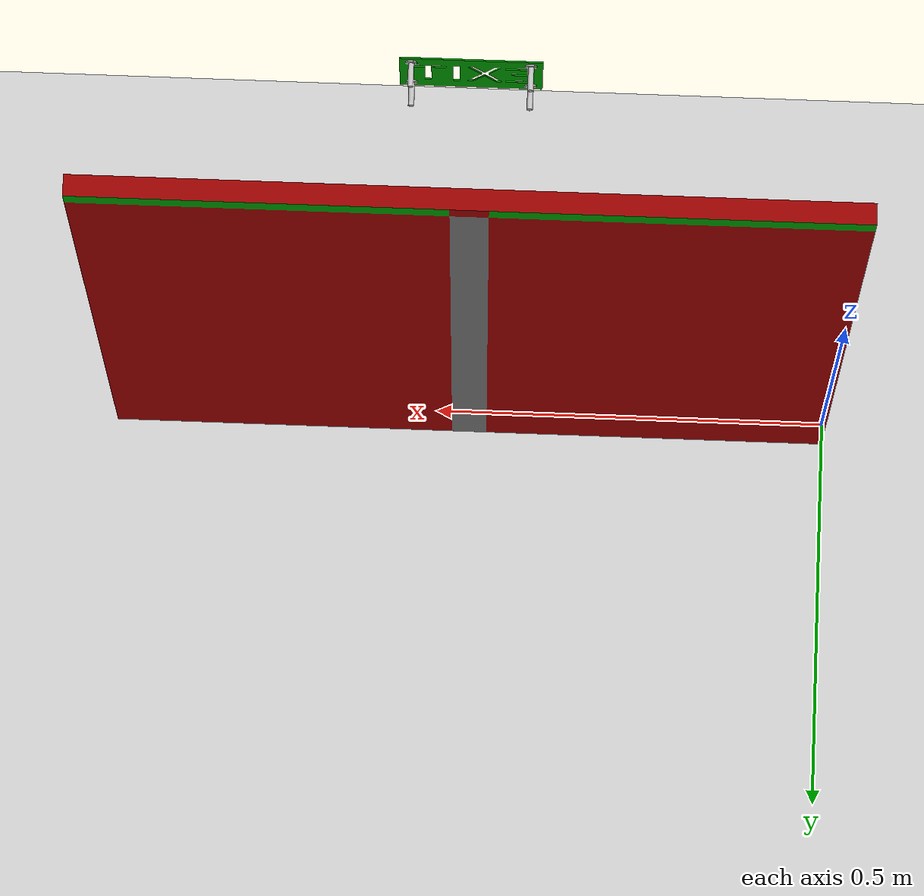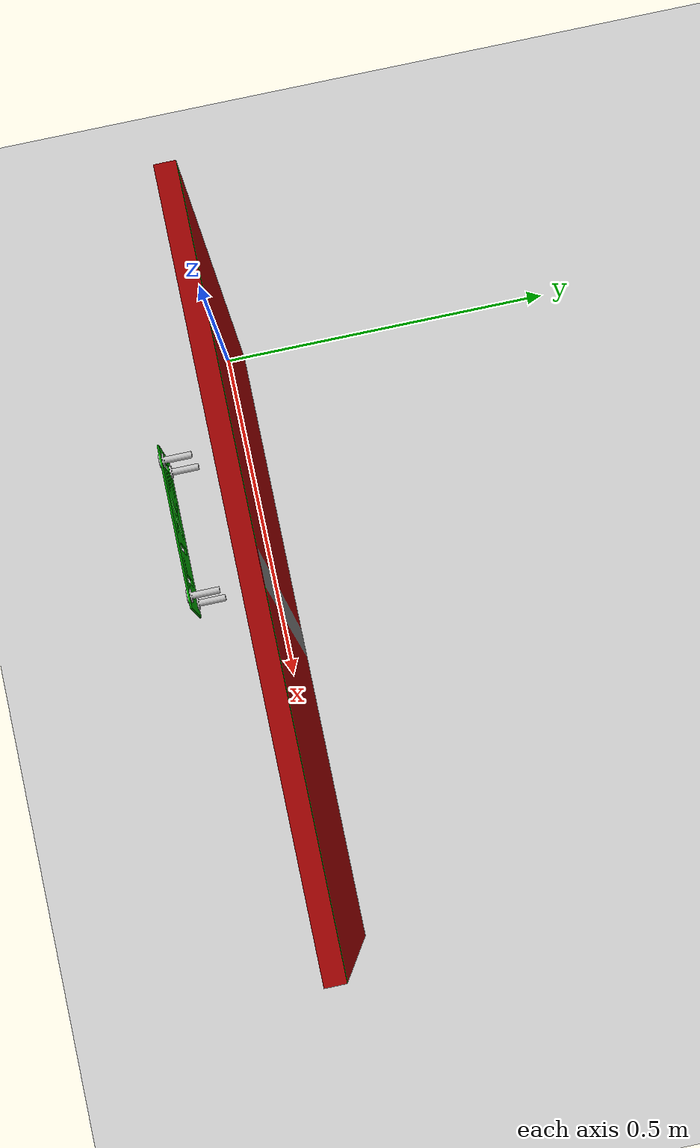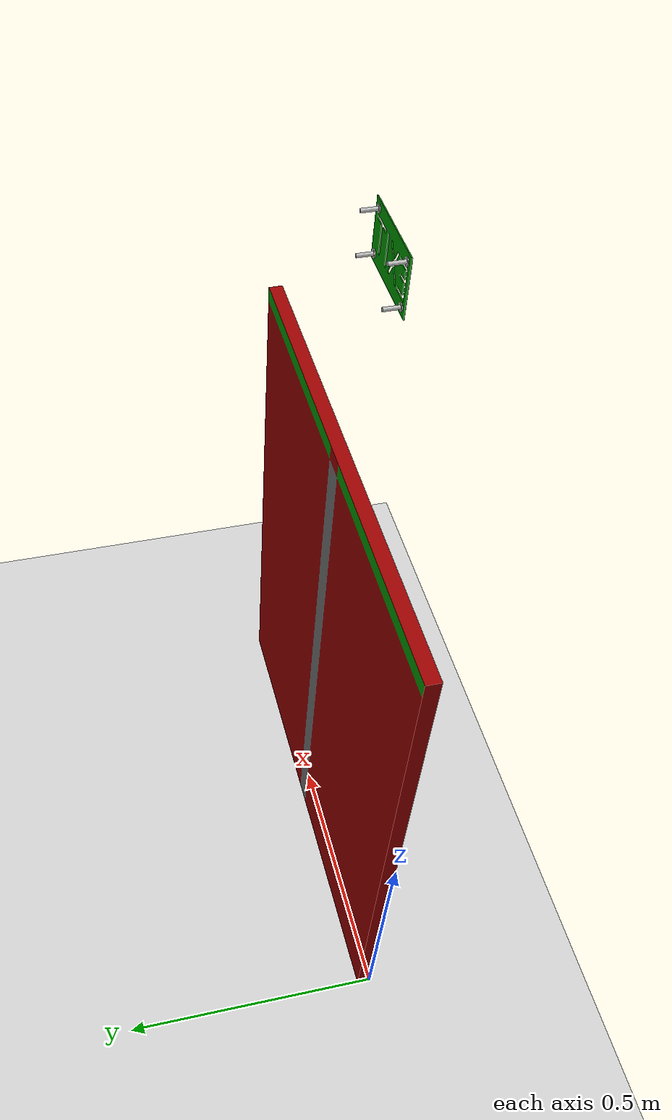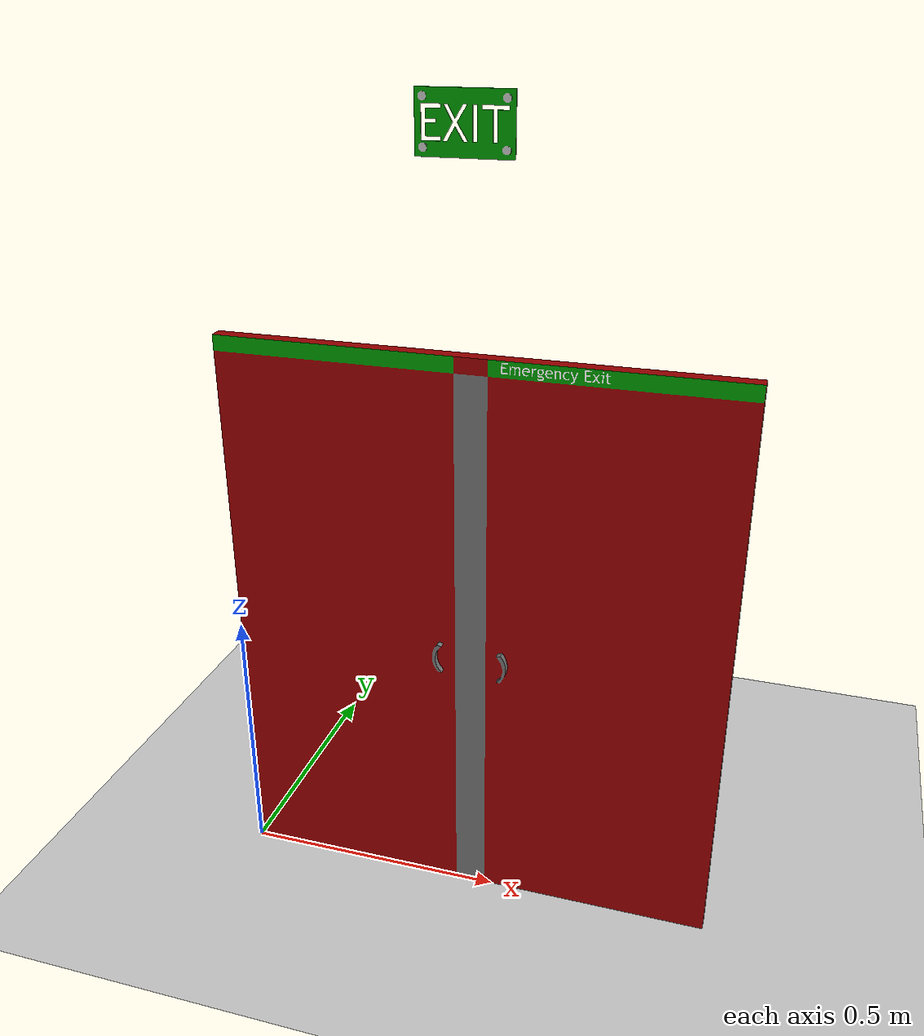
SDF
<?xml version="1.0" ?>
<sdf version="1.5">
  <world name="default">

    <!-- A global light source -->
    <include>
      <uri>model://sun</uri>
    </include>

    <!-- A ground plane -->
    <include>
      <uri>model://ground_plane</uri>
    </include>

    <!-- A emergency_exit_door -->
    <include>
      <static>true</static>
        <pose>0 0 0 0 0 0</pose>
      <uri>model://emergency_exit_door</uri>
    </include>

  </world>
</sdf>

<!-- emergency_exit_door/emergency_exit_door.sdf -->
<sdf version="1.5">
  <model name="emergency_exit_door">
    <static>true</static>
    <link name="emergency_exit_door_link">
        <collision name="emergency_exit_door_collision">
         <geometry>
            <mesh>
                <uri>model://emergency_exit_door/meshes/model.dae</uri>
                <scale>0.5 0.5 0.5</scale>
            </mesh>
        </geometry>
      </collision>

      <visual name="emergency_exit_door_mesh">
        <cast_shadows>false</cast_shadows>
        <geometry>
            <mesh>
                <uri>model://emergency_exit_door/meshes/model.dae</uri>
                <scale>0.5 0.5 0.5</scale>
            </mesh>
        </geometry>
      </visual>
    </link>
  </model>
</sdf>
